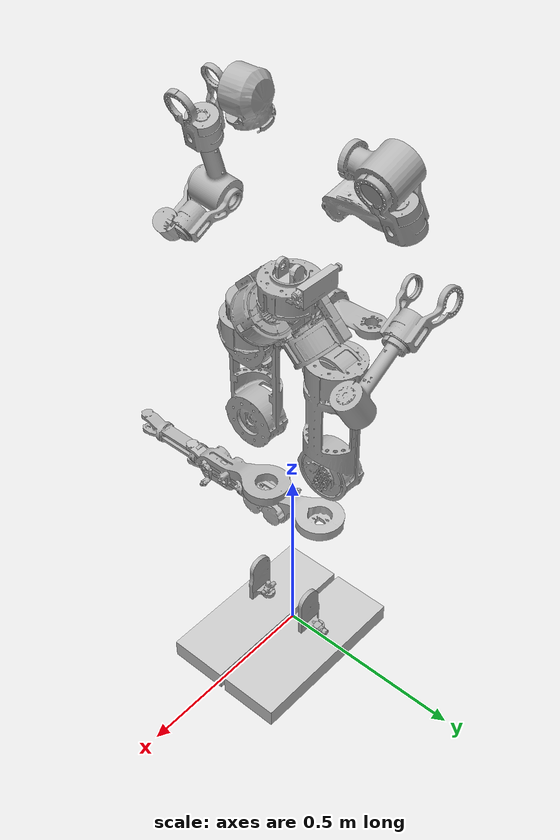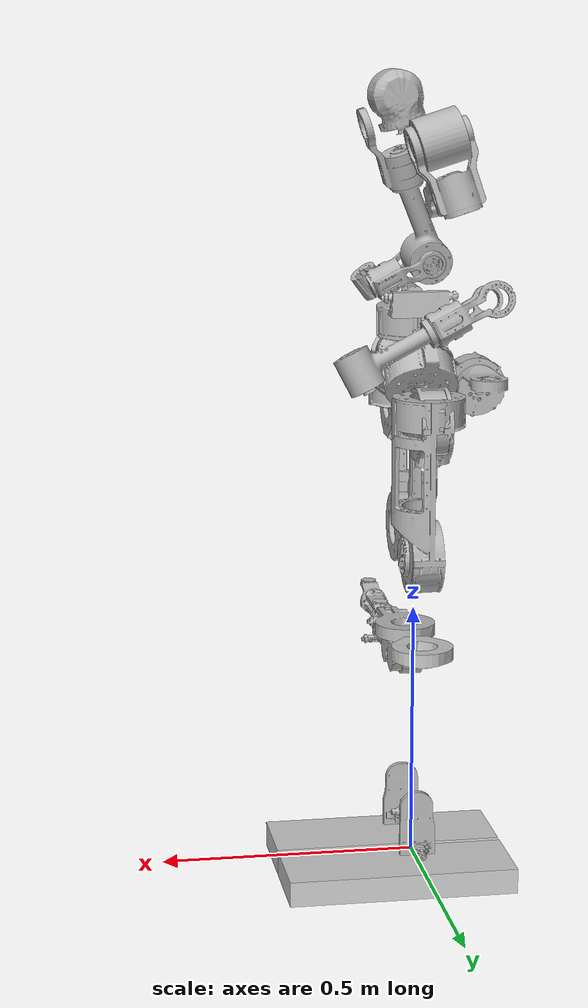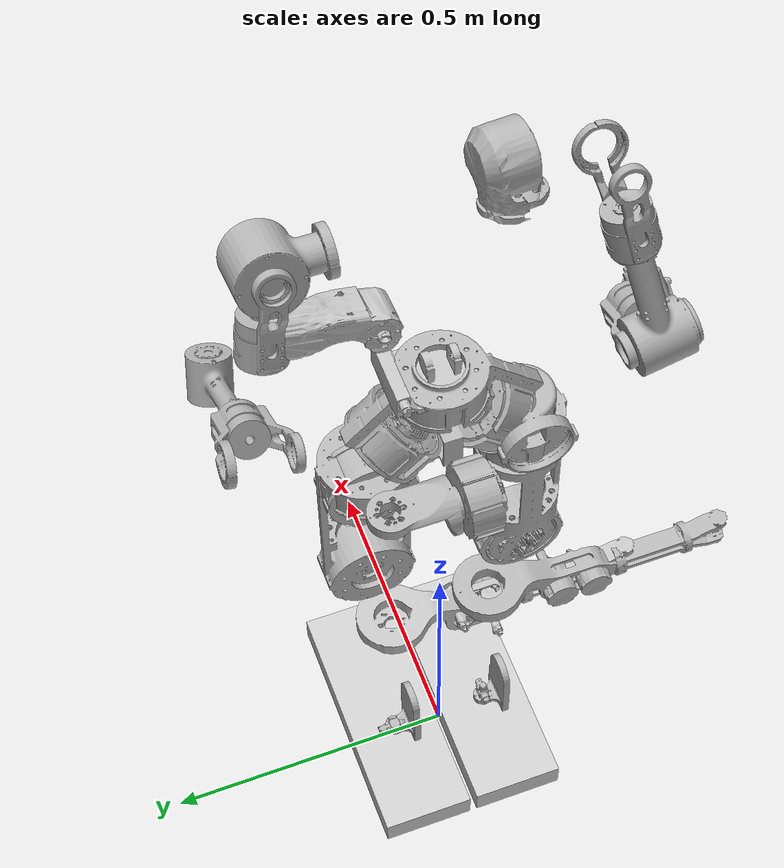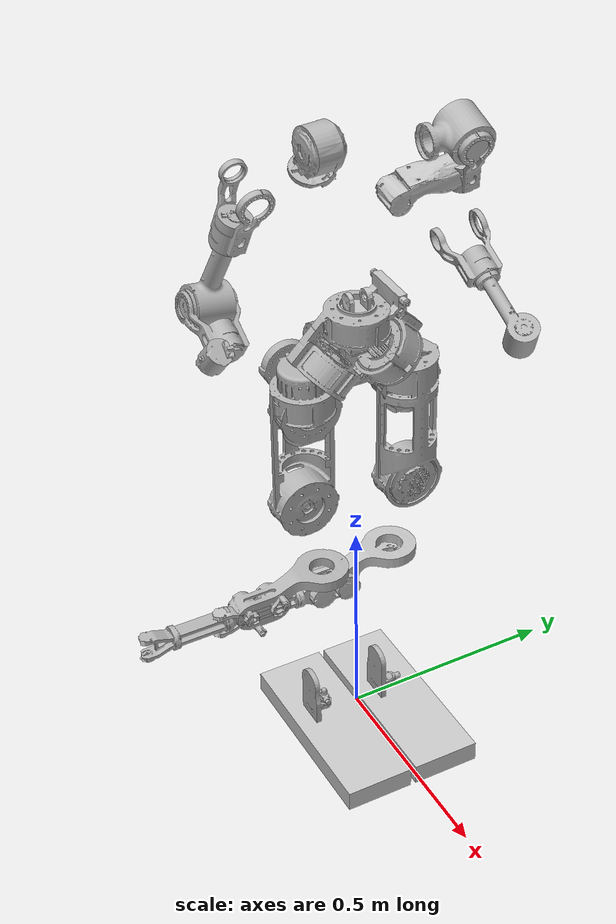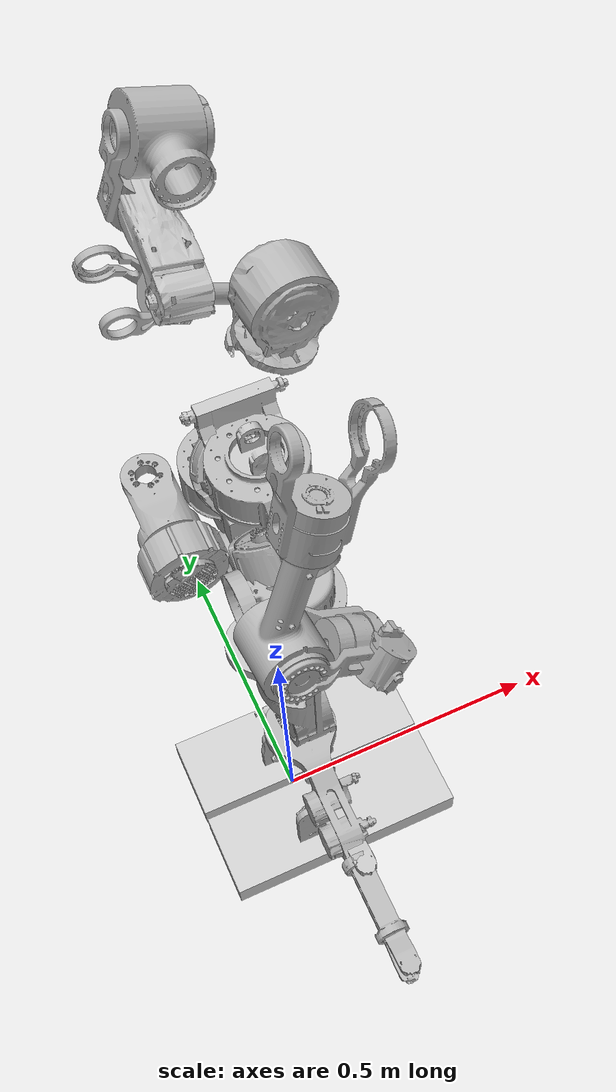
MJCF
<mujoco model="speedbot_v4">
  <compiler angle="radian" meshdir="speedbot_v4/meshes/" />
  <option timestep="0.001" tolerance="1e-10" solver="Newton" jacobian="dense" cone="pyramidal" gravity="0 0 -9.81">
    <flag contact="enable" energy="enable" />
  </option>
  <size njmax="500" nconmax="1200" />
  <default>
    <light castshadow="false" />
    <geom rgba="0.784 0.784 0.784 1" />
    <default class="visual">
      <geom type="mesh" contype="0" conaffinity="0" group="1" density="0" />
    </default>
    <default class="collision">
      <geom contype="1" conaffinity="1" friction="1.0 0.3 0.3" margin="0.001" group="0" />
    </default>
    <joint damping="0.1" frictionloss="1" armature="0.01" />
  </default>
  <asset>
    <mesh name="base_link" file="base_link.STL" />
    <mesh name="left_ankle_pitch" file="left_ankle_pitch.STL" />
    <mesh name="left_ankle_roll" file="left_ankle_roll.STL" />
    <mesh name="left_elbow" file="left_elbow.STL" />
    <mesh name="left_hip_pitch" file="left_hip_pitch.STL" />
    <mesh name="left_hip_roll" file="left_hip_roll.STL" />
    <mesh name="left_hip_yaw" file="left_hip_yaw.STL" />
    <mesh name="left_knee" file="left_knee.STL" />
    <mesh name="left_shoulder_pitch" file="left_shoulder_pitch.STL" />
    <mesh name="left_shoulder_roll" file="left_shoulder_roll.STL" />
    <mesh name="left_shoulder_yaw" file="left_shoulder_yaw.STL" />
    <mesh name="left_wrist_roll" file="left_wrist_roll.STL" />
    <mesh name="right_ankle_pitch" file="right_ankle_pitch.STL" />
    <mesh name="right_ankle_roll" file="right_ankle_roll.STL" />
    <mesh name="right_elbow" file="right_elbow.STL" />
    <mesh name="right_hip_pitch" file="right_hip_pitch.STL" />
    <mesh name="right_hip_roll" file="right_hip_roll.STL" />
    <mesh name="right_hip_yaw" file="right_hip_yaw.STL" />
    <mesh name="right_knee" file="right_knee.STL" />
    <mesh name="right_shoulder_pitch" file="right_shoulder_pitch.STL" />
    <mesh name="right_shoulder_roll" file="right_shoulder_roll.STL" />
    <mesh name="right_shoulder_yaw" file="right_shoulder_yaw.STL" />
    <mesh name="right_wrist_roll" file="right_wrist_roll.STL" />
    <mesh name="waist_yaw" file="waist_yaw.STL" />
  </asset>
  <worldbody>
    <body name="base_link" pos="0 0 1.003">
      <freejoint name="float_base" />
      <inertial mass="7.4135" pos="-0.10125 -1.4179E-07 -0.041448" fullinertia="0.028711 0.014902 0.026823 2.4853e-08 -0.0011713 2.6749e-09" />
      <geom class="visual" pos="0 0 0" euler="0 0 0" rgba="0.69804 0.69804 0.69804 1" type="mesh" mesh="base_link" />
      <geom class="collision" pos="0 0 0" euler="0 0 0" type="mesh" mesh="base_link" />
      <site name="imu" quat="1 0 0 0" />
      <body name="left_hip_roll" pos="-0.11644 0.1225 -0.04795">
        <joint name="left_hip_roll_joint" axis="1 0 0" range="-0.17 0.44" />
        <inertial mass="2.1827" pos="0.10837 -2.3489E-06 -0.020356" fullinertia="0.0028761 0.0032228 0.0034399 4.6498e-10 0.00014689 -3.1042e-09" />
        <geom class="visual" pos="0 0 0" euler="0 0 0" rgba="0.69804 0.69804 0.69804 1" type="mesh" mesh="left_hip_roll" />
        <body name="left_hip_yaw" pos="0.1155 0 -0.0182">
          <joint name="left_hip_yaw_joint" axis="0 0 1" range="-0.7 0.7" />
          <inertial mass="3.3125" pos="-0.00016271 -0.0040921 -0.1177" fullinertia="0.0053166 0.0062614 0.0051934 -1.9892e-09 -4.9223e-06 -0.00018436" />
          <geom class="visual" pos="0 0 0" euler="0 0 0" rgba="0.69804 0.69804 0.69804 1" type="mesh" mesh="left_hip_yaw" />
          <body name="left_hip_pitch" pos="0 -0.0015 -0.125">
            <joint name="left_hip_pitch_joint" axis="0 1 0" range="-1.34 1.83" />
            <inertial mass="5.7187" pos="0.0025393 0.0034884 -0.15511" fullinertia="0.032618 0.03304 0.0097265 3.4025e-05 0.00057827 -0.002044" />
            <geom class="visual" pos="0 0 0" euler="0 0 0" rgba="0.69804 0.69804 0.69804 1" type="mesh" mesh="left_hip_pitch" />
            <body name="left_knee" pos="0 -0.034937 -0.4">
              <joint name="left_knee_joint" axis="0 -1 0" range="-2.09 0.09" />
              <inertial mass="3.6902" pos="-0.017852 -6.7212E-06 -0.15577" fullinertia="0.022044 0.022729 0.002391 -9.3601e-06 7.1509e-05 7.66e-05" />
              <geom class="visual" pos="0 0 0" euler="0 0 0" rgba="0.75294 0.75294 0.75294 1" type="mesh" mesh="left_knee" />
              <body name="left_ankle_pitch" pos="0 0.00043724 -0.387">
                <joint name="left_ankle_pitch_joint" axis="0 -1 0" range="-0.52 1.05" />
                <inertial mass="0.09865" pos="1.6609E-09 3.2596E-09 -6.0503E-09" fullinertia="2.4782e-05 6.0596e-06 2.4168e-05 -9.3355e-12 -8.3612e-13 -1.4509e-12" />
                <geom class="visual" pos="0 0 0" euler="0 0 0" rgba="0.69804 0.69804 0.69804 1" type="mesh" mesh="left_ankle_pitch" />
                <body name="left_ankle_roll">
                  <joint name="left_ankle_roll_joint" axis="-1 0 0" range="-0.44 0.44" />
                  <inertial mass="0.60538" pos="0.039669 -5.3886E-08 -0.036778" fullinertia="0.00034025 0.0025604 0.0026384 -1.4526e-09 0.00017653 -8.608e-10" />
                  <geom class="visual" pos="0 0 0" euler="0 0 0" rgba="0.69804 0.69804 0.69804 1" type="mesh" mesh="left_ankle_roll" />
                  <geom class="collision" pos="0.046 0 -0.042" euler="0 0 0" type="box" size="0.225 0.08 0.025" />
                  <body name="left_foot_front_link" pos="0.15 0 -0.052" />
                  <body name="left_foot_mid_link" pos="0.05 -0 -0.052" />
                  <body name="left_foot_hind_link" pos="-0.06 0 -0.052" />
                  <geom type="box" condim="4" friction="1 1 1" rgba="1 0 0 0" pos="0.045 0 -0.047" size="0.105 0.040 0.006" />
                  <site name="lf-tc" type="box" size="0.106 0.041 0.007" pos="0.045 0 -0.047" rgba="0 1 0 0" />
                </body>
              </body>
            </body>
          </body>
        </body>
      </body>
      <body name="right_hip_roll" pos="-0.11644 -0.1225 -0.04795">
        <joint name="right_hip_roll_joint" axis="1 0 0" range="-0.44 0.17" />
        <inertial mass="2.1827" pos="0.10837 -2.3489E-06 -0.020356" fullinertia="0.0028761 0.0032228 0.0034399 4.6498e-10 0.00014689 -3.1042e-09" />
        <geom class="visual" pos="0 0 0" euler="0 0 0" rgba="0.69804 0.69804 0.69804 1" type="mesh" mesh="right_hip_roll" />
        <body name="right_hip_yaw" pos="0.1155 0 -0.0182">
          <joint name="right_hip_yaw_joint" axis="0 0 1" range="-0.7 0.7" />
          <inertial mass="3.3125" pos="-0.00016274 0.0040921 -0.1177" fullinertia="0.0053166 0.0062614 0.0051934 -1.9892e-09 -4.9218e-06 0.00018436" />
          <geom class="visual" pos="0 0 0" euler="0 0 0" rgba="0.69804 0.69804 0.69804 1" type="mesh" mesh="right_hip_yaw" />
          <body name="right_hip_pitch" pos="0 0.0015 -0.125">
            <joint name="right_hip_pitch_joint" axis="0 1 0" range="-1.34 1.83" />
            <inertial mass="5.7187" pos="0.0025393 -0.0034884 -0.15511" fullinertia="0.032618 0.03304 0.0097267 -3.42e-05 0.00057863 0.002044" />
            <geom class="visual" pos="0 0 0" euler="0 0 0" rgba="0.69804 0.69804 0.69804 1" type="mesh" mesh="right_hip_pitch" />
            <body name="right_knee" pos="0 0.034937 -0.4">
              <joint name="right_knee_joint" axis="0 -1 0" range="-2.09 0.09" />
              <inertial mass="3.6902" pos="-0.017852 6.7212E-06 -0.15577" fullinertia="0.022044 0.022729 0.002391 9.4018e-06 7.1633e-05 -7.6587e-05" />
              <geom class="visual" pos="0 0 0" euler="0 0 0" rgba="0.69804 0.69804 0.69804 1" type="mesh" mesh="right_knee" />
              <body name="right_ankle_pitch" pos="0 -0.00043724 -0.387">
                <joint name="right_ankle_pitch_joint" axis="0 -1 0" range="-0.52 1.05" />
                <inertial mass="0.09865" pos="1.6609E-09 3.2596E-09 -6.0503E-09" fullinertia="2.4782e-05 6.0596e-06 2.4168e-05 -9.3355e-12 -8.3611e-13 -1.4509e-12" />
                <geom class="visual" pos="0 0 0" euler="0 0 0" rgba="0.69804 0.69804 0.69804 1" type="mesh" mesh="right_ankle_pitch" />
                <body name="right_ankle_roll">
                  <joint name="right_ankle_roll_joint" axis="-1 0 0" range="-0.44 0.44" />
                  <inertial mass="0.60538" pos="0.039669 -5.3901E-08 -0.036778" fullinertia="0.00034025 0.0025604 0.0026384 -1.4509e-09 0.00017653 -8.6104e-10" />
                  <geom class="visual" pos="0 0 0" euler="0 0 0" rgba="0.69804 0.69804 0.69804 1" type="mesh" mesh="right_ankle_roll" />
                  <geom class="collision" pos="0.046 0 -0.042" euler="0 0 0" type="box" size="0.225 0.08 0.025" />
                  <body name="right_foot_front_link" pos="0.15 0 -0.052" />
                  <body name="right_foot_mid_link" pos="0.05 -0 -0.052" />
                  <body name="right_foot_hind_link" pos="-0.06 0 -0.052" />
                  <geom type="box" condim="4" friction="1 1 1" rgba="1 0 0 0" pos="0.045 0 -0.047" size="0.105 0.040 0.006" />
                  <site name="rf-tc" type="box" size="0.106 0.041 0.007" pos="0.045 0 -0.047" rgba="0 1 0 0" />
                </body>
              </body>
            </body>
          </body>
        </body>
      </body>
      <body name="waist_yaw" pos="0.0080635 0 0.0573">
        <joint name="waist_yaw_joint" axis="0 0 1" range="-3.14 3.14" />
        <inertial mass="10.4394" pos="0.001283 -7.589E-05 0.20559" fullinertia="0.032326 0.030447 0.033042 -1.5883e-05 -8.8259e-07 -8.047e-07" />
        <geom class="visual" pos="0 0 0" euler="0 0 0" rgba="0.75294 0.75294 0.75294 1" type="mesh" mesh="waist_yaw" />
        <geom class="collision" pos="0 0 0" euler="0 0 0" type="mesh" mesh="waist_yaw" />
        <body name="upper_body_link" pos="0 0 0.3" />
      </body>
      <body name="left_shoulder_pitch" pos="0.0080635 0.098693 0.42818" euler="0 0.3 0">
        <joint name="left_shoulder_pitch_joint" axis="0 1 0" range="-3.09 2.67" />
        <inertial mass="1.4073" pos="0.0091062 0.13568 0.00087007" fullinertia="0.0018568 0.0013884 0.0017462 -5.7776e-05 1.9795e-10 -8.0408e-10" />
        <geom class="visual" pos="0 0 0" euler="0 0 0" rgba="0.69804 0.69804 0.69804 1" type="mesh" mesh="left_shoulder_pitch" />
        <body name="left_shoulder_roll" pos="0.0444 0.14081 0.00087012" euler="-1.4 0 0">
          <joint name="left_shoulder_roll_joint" axis="-1 0 0" range="-1.59 2.25" />
          <inertial mass="1.0231" pos="-0.044206 0.091886 2.9541E-07" fullinertia="0.001273 0.00072079 0.0013318 0.00014968 -9.7343e-09 1.24e-08" />
          <geom class="visual" pos="0 0 0" euler="0 0 0" rgba="0.69804 0.69804 0.69804 1" type="mesh" mesh="left_shoulder_roll" />
          <body name="left_shoulder_yaw" pos="-0.0444 0.103 0">
            <joint name="left_shoulder_yaw_joint" axis="0 1 0" range="-2.62 2.62" />
            <inertial mass="1.222" pos="-0.00062283 0.18132 0.008027" fullinertia="0.0025394 0.0010216 0.0025368 -2.4639e-05 -4.375e-06 -0.00011054" />
            <geom class="visual" pos="0 0 0" euler="0 0 0" rgba="0.75294 0.75294 0.75294 1" type="mesh" mesh="left_shoulder_yaw" />
            <body name="left_elbow" pos="0 0.197 0.0135" euler="0 0 -1.4">
              <joint name="left_elbow_joint" axis="0 0 1" range="-2.09 1.05" />
              <inertial mass="0.73325" pos="-4.9236E-08 0.080341 -0.013515" fullinertia="0.00086196 0.00041879 0.00080645 -8.6493e-10 3.6555e-09 0.00010899" />
              <geom class="visual" pos="0 0 0" euler="0 0 0" rgba="0.69804 0.69804 0.69804 1" type="mesh" mesh="left_elbow" />
              <body name="left_wrist_roll" pos="0 0.0896 -0.0135">
                <joint name="left_wrist_roll_joint" axis="0 1 0" range="-1.97 1.97" />
                <inertial mass="0.63743" pos="0.0029058 0.16387 -1.135E-05" fullinertia="0.0011202 0.00034519 0.0011544 -5.9547e-05 -3.7396e-08 -7.9913e-08" />
                <geom class="visual" pos="0 0 0" euler="0 0 0" rgba="0.69804 0.69804 0.69804 1" type="mesh" mesh="left_wrist_roll" />
              </body>
            </body>
          </body>
        </body>
      </body>
      <body name="right_shoulder_pitch" pos="0.0080635 -0.098693 0.42818" euler="0 0.3 0">
        <joint name="right_shoulder_pitch_joint" axis="0 -1 0" range="-3.09 2.67" />
        <inertial mass="1.4073" pos="0.0091062 -0.13568 0.00087017" fullinertia="0.0018568 0.0013884 0.0017462 5.7776e-05 -1.9795e-10 -8.0408e-10" />
        <geom class="visual" pos="0 0 0" euler="0 0 0" rgba="0.69804 0.69804 0.69804 1" type="mesh" mesh="right_shoulder_pitch" />
        <body name="right_shoulder_roll" pos="0.0444 -0.14081 0.00087012" euler="1.4 0 0">
          <joint name="right_shoulder_roll_joint" axis="-1 0 0" range="-2.25 1.59" />
          <inertial mass="1.0231" pos="-0.044206 -0.091886 -2.9542E-07" fullinertia="0.001273 0.00072079 0.0013318 -0.00014968 9.7343e-09 1.2399e-08" />
          <geom class="visual" pos="0 0 0" euler="0 0 0" rgba="0.69804 0.69804 0.69804 1" type="mesh" mesh="right_shoulder_roll" />
          <body name="right_shoulder_yaw" pos="-0.0444 -0.103 0">
            <joint name="right_shoulder_yaw_joint" axis="0 -1 0" range="-2.62 2.62" />
            <inertial mass="1.222" pos="-0.00062239 -0.18132 0.0080269" fullinertia="0.0025394 0.0010216 0.0025368 2.4641e-05 -4.3567e-06 0.00011057" />
            <geom class="visual" pos="0 0 0" euler="0 0 0" rgba="0.69804 0.69804 0.69804 1" type="mesh" mesh="right_shoulder_yaw" />
            <body name="right_elbow" pos="0 -0.197 0.0135" euler="0 0 1.4">
              <joint name="right_elbow_joint" axis="0 0 1" range="-1.05 2.09" />
              <inertial mass="0.73325" pos="4.9236E-08 -0.080341 -0.013515" fullinertia="0.00086196 0.00041879 0.00080645 -8.6493e-10 -3.6555e-09 -0.00010899" />
              <geom class="visual" pos="0 0 0" euler="0 0 0" rgba="0.69804 0.69804 0.69804 1" type="mesh" mesh="right_elbow" />
              <body name="right_wrist_roll" pos="0 -0.1221 -0.0135">
                <joint name="right_wrist_roll_joint" axis="0 1 0" range="-1.97 1.97" />
                <inertial mass="0.63743" pos="0.0029058 -0.13137 1.135E-05" fullinertia="0.0011202 0.00034519 0.0011544 5.9547e-05 3.7396e-08 -7.9913e-08" />
                <geom class="visual" pos="0 0 0" euler="0 0 0" rgba="0.69804 0.69804 0.69804 1" type="mesh" mesh="right_wrist_roll" />
              </body>
            </body>
          </body>
        </body>
      </body>
    </body>
  </worldbody>
  <contact>
    <exclude name="ex_base_link_left_hip_roll" body1="base_link" body2="left_hip_roll" />
    <exclude name="ex_left_hip_roll_left_hip_yaw" body1="left_hip_roll" body2="left_hip_yaw" />
    <exclude name="ex_left_hip_yaw_left_hip_pitch" body1="left_hip_yaw" body2="left_hip_pitch" />
    <exclude name="ex_left_hip_pitch_left_knee" body1="left_hip_pitch" body2="left_knee" />
    <exclude name="ex_left_knee_left_ankle_pitch" body1="left_knee" body2="left_ankle_pitch" />
    <exclude name="ex_left_ankle_pitch_left_ankle_roll" body1="left_ankle_pitch" body2="left_ankle_roll" />
    <exclude name="ex_base_link_right_hip_roll" body1="base_link" body2="right_hip_roll" />
    <exclude name="ex_right_hip_roll_right_hip_yaw" body1="right_hip_roll" body2="right_hip_yaw" />
    <exclude name="ex_right_hip_yaw_right_hip_pitch" body1="right_hip_yaw" body2="right_hip_pitch" />
    <exclude name="ex_right_hip_pitch_right_knee" body1="right_hip_pitch" body2="right_knee" />
    <exclude name="ex_right_knee_right_ankle_pitch" body1="right_knee" body2="right_ankle_pitch" />
    <exclude name="ex_right_ankle_pitch_right_ankle_roll" body1="right_ankle_pitch" body2="right_ankle_roll" />
    <exclude name="ex_base_link_waist_yaw" body1="base_link" body2="waist_yaw" />
    <exclude name="ex_base_link_left_shoulder_pitch" body1="base_link" body2="left_shoulder_pitch" />
    <exclude name="ex_left_shoulder_pitch_left_shoulder_roll" body1="left_shoulder_pitch" body2="left_shoulder_roll" />
    <exclude name="ex_left_shoulder_roll_left_shoulder_yaw" body1="left_shoulder_roll" body2="left_shoulder_yaw" />
    <exclude name="ex_left_shoulder_yaw_left_elbow" body1="left_shoulder_yaw" body2="left_elbow" />
    <exclude name="ex_left_elbow_left_wrist_roll" body1="left_elbow" body2="left_wrist_roll" />
    <exclude name="ex_base_link_right_shoulder_pitch" body1="base_link" body2="right_shoulder_pitch" />
    <exclude name="ex_right_shoulder_pitch_right_shoulder_roll" body1="right_shoulder_pitch" body2="right_shoulder_roll" />
    <exclude name="ex_right_shoulder_roll_right_shoulder_yaw" body1="right_shoulder_roll" body2="right_shoulder_yaw" />
    <exclude name="ex_right_shoulder_yaw_right_elbow" body1="right_shoulder_yaw" body2="right_elbow" />
    <exclude name="ex_right_elbow_right_wrist_roll" body1="right_elbow" body2="right_wrist_roll" />
    <exclude name="ex_left_ankle_roll_left_foot_front_link" body1="left_ankle_roll" body2="left_foot_front_link" />
    <exclude name="ex_left_ankle_roll_left_foot_mid_link" body1="left_ankle_roll" body2="left_foot_mid_link" />
    <exclude name="ex_left_ankle_roll_left_foot_hind_link" body1="left_ankle_roll" body2="left_foot_hind_link" />
    <exclude name="ex_right_ankle_roll_right_foot_front_link" body1="right_ankle_roll" body2="right_foot_front_link" />
    <exclude name="ex_right_ankle_roll_right_foot_mid_link" body1="right_ankle_roll" body2="right_foot_mid_link" />
    <exclude name="ex_right_ankle_roll_right_foot_hind_link" body1="right_ankle_roll" body2="right_foot_hind_link" />
    <exclude name="ex_waist_yaw_upper_body_link" body1="waist_yaw" body2="upper_body_link" />
  </contact>
  <actuator>
    <motor name="M_right_hip_pitch_joint" joint="right_hip_pitch_joint" gear="1" ctrllimited="true" ctrlrange="-267 267" />
    <motor name="M_right_hip_roll_joint" joint="right_hip_roll_joint" gear="1" ctrllimited="true" ctrlrange="-267 267" />
    <motor name="M_right_hip_yaw_joint" joint="right_hip_yaw_joint" gear="1" ctrllimited="true" ctrlrange="-121 121" />
    <motor name="M_right_knee_joint" joint="right_knee_joint" gear="1" ctrllimited="true" ctrlrange="-267 267" />
    <motor name="M_right_ankle_pitch_joint" joint="right_ankle_pitch_joint" gear="1" ctrllimited="true" ctrlrange="-42 42" />
    <motor name="M_right_ankle_roll_joint" joint="right_ankle_roll_joint" gear="1" ctrllimited="true" ctrlrange="-42 42" />
    <motor name="M_left_hip_pitch_joint" joint="left_hip_pitch_joint" gear="1" ctrllimited="true" ctrlrange="-267 267" />
    <motor name="M_left_hip_roll_joint" joint="left_hip_roll_joint" gear="1" ctrllimited="true" ctrlrange="-267 267" />
    <motor name="M_left_hip_yaw_joint" joint="left_hip_yaw_joint" gear="1" ctrllimited="true" ctrlrange="-121 121" />
    <motor name="M_left_knee_joint" joint="left_knee_joint" gear="1" ctrllimited="true" ctrlrange="-267 267" />
    <motor name="M_left_ankle_pitch_joint" joint="left_ankle_pitch_joint" gear="1" ctrllimited="true" ctrlrange="-42 42" />
    <motor name="M_left_ankle_roll_joint" joint="left_ankle_roll_joint" gear="1" ctrllimited="true" ctrlrange="-42 42" />
    <motor name="M_waist_yaw_joint" joint="waist_yaw_joint" gear="1" ctrllimited="true" ctrlrange="-69 69" />
    <motor name="M_left_shoulder_pitch_joint" joint="left_shoulder_pitch_joint" gear="1" ctrllimited="true" ctrlrange="-60 60" />
    <motor name="M_left_shoulder_roll_joint" joint="left_shoulder_roll_joint" gear="1" ctrllimited="true" ctrlrange="-60 60" />
    <motor name="M_left_shoulder_yaw_joint" joint="left_shoulder_yaw_joint" gear="1" ctrllimited="true" ctrlrange="-60 60" />
    <motor name="M_left_elbow_joint" joint="left_elbow_joint" gear="1" ctrllimited="true" ctrlrange="-40 40" />
    <motor name="M_left_wrist_roll_joint" joint="left_wrist_roll_joint" gear="1" ctrllimited="true" ctrlrange="-20 20" />
    <motor name="M_right_shoulder_pitch_joint" joint="right_shoulder_pitch_joint" gear="1" ctrllimited="true" ctrlrange="-60 60" />
    <motor name="M_right_shoulder_roll_joint" joint="right_shoulder_roll_joint" gear="1" ctrllimited="true" ctrlrange="-60 60" />
    <motor name="M_right_shoulder_yaw_joint" joint="right_shoulder_yaw_joint" gear="1" ctrllimited="true" ctrlrange="-60 60" />
    <motor name="M_right_elbow_joint" joint="right_elbow_joint" gear="1" ctrllimited="true" ctrlrange="-40 40" />
    <motor name="M_right_wrist_roll_joint" joint="right_wrist_roll_joint" gear="1" ctrllimited="true" ctrlrange="-20 20" />
  </actuator>
  <sensor>
    <framequat name="baselink-quat" objtype="site" objname="imu" />
    <velocimeter name="baselink-velocity" site="imu" />
    <gyro name="baselink-gyro" site="imu" />
    <accelerometer name="baselink-baseAcc" site="imu" />
    <touch name="lf-touch" site="lf-tc" />
    <touch name="rf-touch" site="rf-tc" />
  </sensor>
</mujoco>
